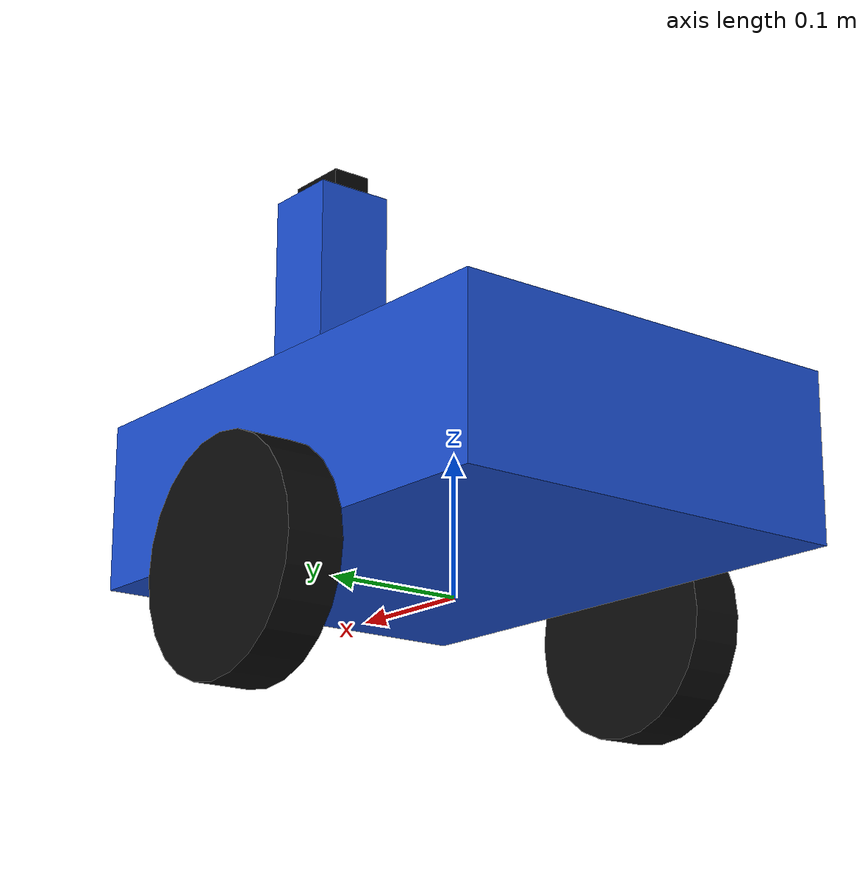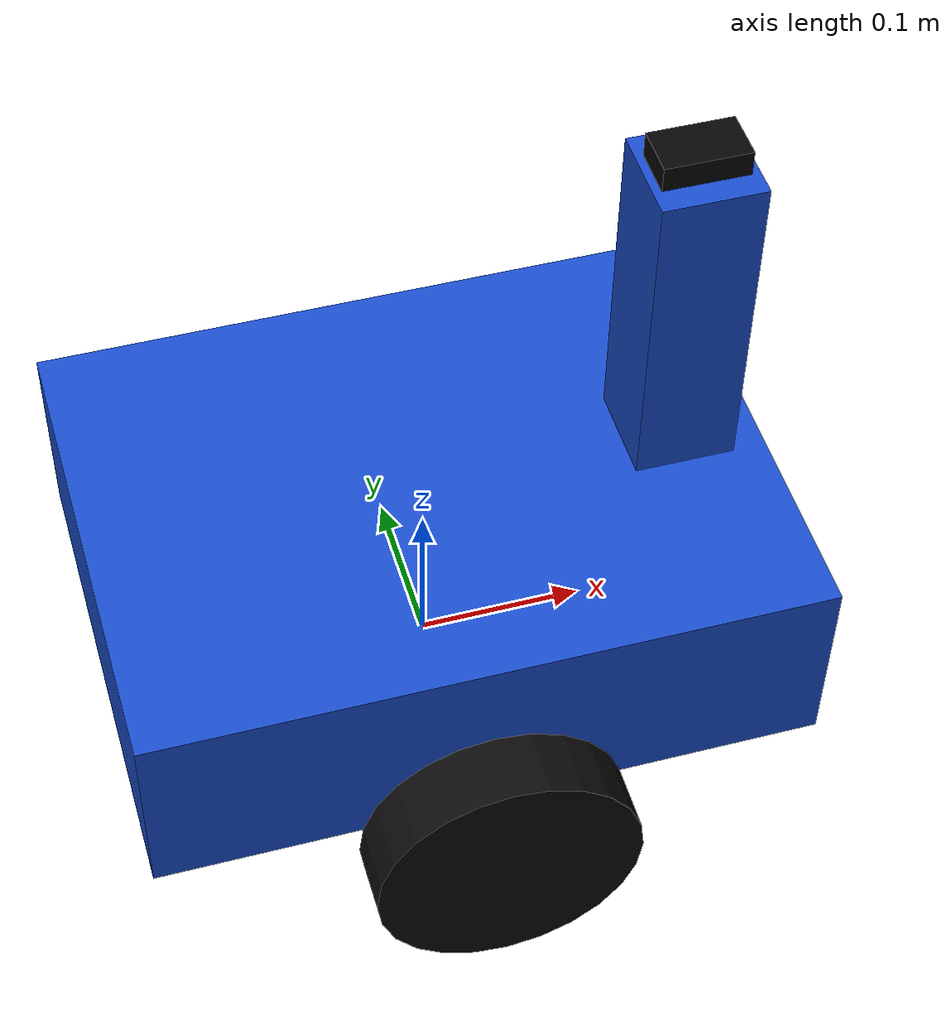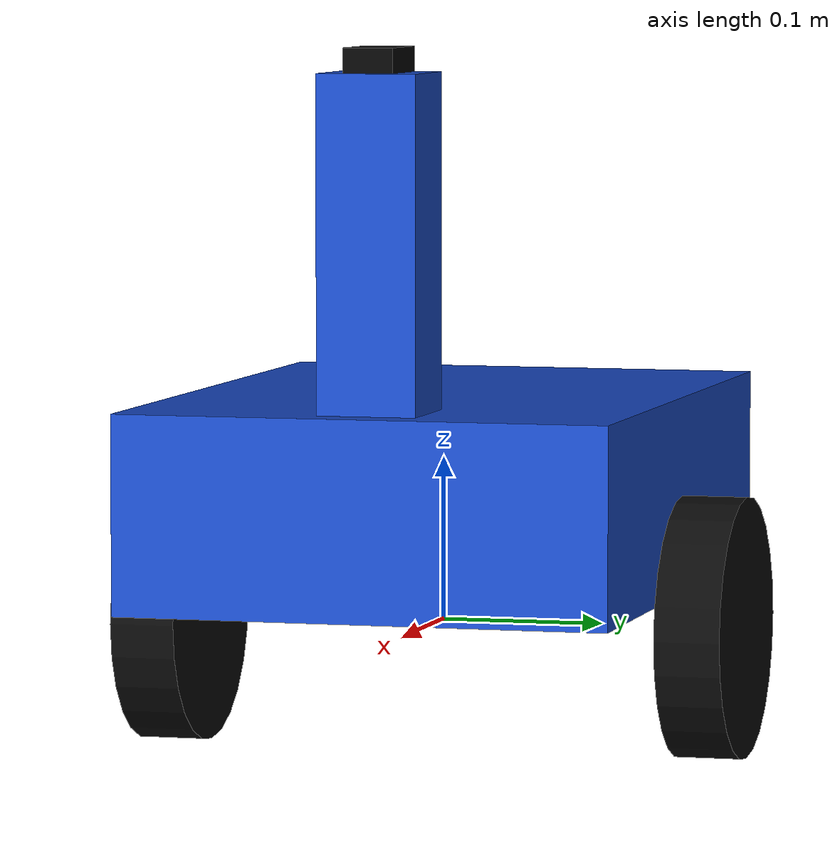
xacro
<?xml version="1.0"?>
<robot xmlns:xacro="http://www.ros.org/wiki/xacro" name="testbot">

  <!-- Provisional values. Replace these with measured Testbot values. -->
  <xacro:property name="body_length" value="0.40"/>
  <xacro:property name="body_width" value="0.30"/>
  <xacro:property name="body_height" value="0.12"/>
  <xacro:property name="wheel_radius" value="0.08"/>
  <xacro:property name="wheel_width" value="0.04"/>
  <xacro:property name="wheel_separation" value="0.34"/>
  <xacro:property name="camera_mount_height" value="0.20"/>

  <material name="testbot_blue"><color rgba="0.10 0.30 0.80 1.0"/></material>
  <material name="rubber"><color rgba="0.04 0.04 0.04 1.0"/></material>
  <material name="camera_black"><color rgba="0.02 0.02 0.02 1.0"/></material>

  <link name="base_link">
    <visual>
      <origin xyz="0 0 ${wheel_radius}"/>
      <geometry><box size="${body_length} ${body_width} ${body_height}"/></geometry>
      <material name="testbot_blue"/>
    </visual>
    <collision>
      <origin xyz="0 0 ${wheel_radius}"/>
      <geometry><box size="${body_length} ${body_width} ${body_height}"/></geometry>
    </collision>
    <inertial>
      <origin xyz="0 0 ${wheel_radius}"/>
      <mass value="5.0"/>
      <inertia ixx="0.05" ixy="0.0" ixz="0.0" iyy="0.08" iyz="0.0" izz="0.10"/>
    </inertial>
  </link>

  <xacro:macro name="wheel" params="name y_position">
    <link name="${name}">
      <visual>
        <origin rpy="${pi/2} 0 0"/>
        <geometry><cylinder radius="${wheel_radius}" length="${wheel_width}"/></geometry>
        <material name="rubber"/>
      </visual>
      <collision>
        <origin rpy="${pi/2} 0 0"/>
        <geometry><cylinder radius="${wheel_radius}" length="${wheel_width}"/></geometry>
      </collision>
      <inertial>
        <mass value="0.5"/>
        <inertia ixx="0.002" ixy="0.0" ixz="0.0" iyy="0.001" iyz="0.0" izz="0.002"/>
      </inertial>
    </link>
    <joint name="${name}_joint" type="continuous">
      <parent link="base_link"/>
      <child link="${name}"/>
      <origin xyz="0 ${y_position} 0"/>
      <axis xyz="0 1 0"/>
    </joint>
  </xacro:macro>

  <xacro:wheel name="left_wheel" y_position="${wheel_separation / 2}"/>
  <xacro:wheel name="right_wheel" y_position="${-wheel_separation / 2}"/>

  <link name="camera_mount_link">
    <visual>
      <origin xyz="0 0 ${camera_mount_height / 2}"/>
      <geometry><box size="0.06 0.06 ${camera_mount_height}"/></geometry>
      <material name="testbot_blue"/>
    </visual>
    <collision>
      <origin xyz="0 0 ${camera_mount_height / 2}"/>
      <geometry><box size="0.06 0.06 ${camera_mount_height}"/></geometry>
    </collision>
  </link>

  <joint name="camera_mount_joint" type="fixed">
    <parent link="base_link"/>
    <child link="camera_mount_link"/>
    <origin xyz="${body_length / 2 - 0.05} 0 ${wheel_radius + body_height / 2}"/>
  </joint>

  <link name="camera_link">
    <visual>
      <origin xyz="0 0 0"/>
      <geometry><box size="0.05 0.03 0.03"/></geometry>
      <material name="camera_black"/>
    </visual>
    <collision>
      <geometry><box size="0.05 0.03 0.03"/></geometry>
    </collision>
  </link>

  <joint name="camera_tilt_joint" type="revolute">
    <parent link="camera_mount_link"/>
    <child link="camera_link"/>
    <origin xyz="0 0 ${camera_mount_height}"/>
    <axis xyz="0 1 0"/>
    <limit lower="-0.785" upper="0.785" effort="0.2" velocity="1.0"/>
  </joint>

</robot>
